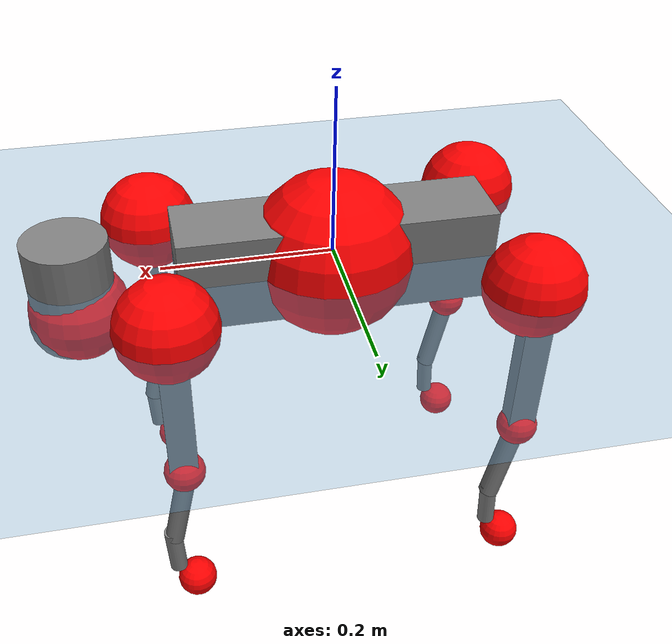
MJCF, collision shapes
<mujoco model="go2">
  <compiler angle="radian" assetdir="assets" balanceinertia="true" inertiafromgeom="false"/>

  <option timestep="0.005" density="1.2" viscosity="2e-05"/>

  <size nkey="1"/>

  <visual>
    <quality shadowsize="8192"/>
    <map shadowclip="0.5"/>
  </visual>

  <default>
    <default class="/">
      <geom contype="0" conaffinity="0" group="1" solref="-1000 -80"/>
      <site size="0.01 0.005 0.005" group="5"/>
      <general forcelimited="true" biastype="affine" gainprm="20" biasprm="0 -20 -0.5"/>
      <default class="go2">
        <joint armature="0.01" damping="0.01" frictionloss="0.2"/>
        <geom condim="1" margin="0.001"/>
        <default class="visual">
          <geom type="mesh" group="2"/>
        </default>
        <default class="collision">
          <geom group="3"/>
          <default class="foot">
            <geom size="0.022 0 0" condim="6" priority="1" friction="0.8 0.02 0.01" solimp="0.015 1 0.022"/>
          </default>
        </default>
        <default class="reward_collision_sphere">
          <geom group="5" rgba="1 0 0 1"/>
        </default>
      </default>
    </default>
  </default>

  <asset>
    <texture type="skybox" colorspace="auto" name="//unnamed_texture_0" builtin="gradient" rgb1="0.95 0.95 0.95" rgb2="0.95 0.95 0.95" width="100" height="600"/>
    <texture type="2d" colorspace="auto" name="texplane" builtin="checker" rgb1="0.345 0.575 0.748" rgb2="0.345 0.575 0.748" markrgb="1 1 1" width="512" height="512"/>
    <material name="MatPlane" class="/" texture="texplane" texuniform="true" texrepeat="2 2" specular="0.9"/>
    <material name="metal" class="/" rgba="0.9 0.95 0.95 1"/>
    <material name="black" class="/" rgba="0 0 0 1"/>
    <material name="white" class="/"/>
    <material name="gray" class="/" rgba="0.671705 0.692426 0.77427 1"/>
    <mesh name="base_0" class="/" file="base_0.obj"/>
    <mesh name="base_1" class="/" file="base_1.obj"/>
    <mesh name="base_2" class="/" file="base_2.obj"/>
    <mesh name="base_3" class="/" file="base_3.obj"/>
    <mesh name="base_4" class="/" file="base_4.obj"/>
    <mesh name="hip_0" class="/" file="hip_0.obj"/>
    <mesh name="hip_1" class="/" file="hip_1.obj"/>
    <mesh name="thigh_0" class="/" file="thigh_0.obj"/>
    <mesh name="thigh_1" class="/" file="thigh_1.obj"/>
    <mesh name="thigh_mirror_0" class="/" file="thigh_mirror_0.obj"/>
    <mesh name="thigh_mirror_1" class="/" file="thigh_mirror_1.obj"/>
    <mesh name="calf_0" class="/" file="calf_0.obj"/>
    <mesh name="calf_1" class="/" file="calf_1.obj"/>
    <mesh name="calf_mirror_0" class="/" file="calf_mirror_0.obj"/>
    <mesh name="calf_mirror_1" class="/" file="calf_mirror_1.obj"/>
    <mesh name="foot" class="/" file="foot.obj"/>
  </asset>

  <worldbody>
    <geom name="floor" class="/" size="100 100 0.125" type="plane" group="0" material="MatPlane"/>
    <light name="toplight_shadow" class="/" pos="0 0 5" dir="0.0990148 0.0990148 -0.990148" type="directional" ambient="0.04 0.04 0.04" diffuse="0.55 0.55 0.55" specular="0.12 0.12 0.12"/>
    <light name="toplight_fill" class="/" pos="0 0 5" dir="0.0990148 0.0990148 -0.990148" type="directional" castshadow="false" ambient="0.04 0.04 0.04" diffuse="0.3 0.3 0.3" specular="0.08 0.08 0.08"/>
    <body name="trunk" childclass="go2" pos="0.000533413 0.000200555 -0.00172945" quat="1 0.000227178 -0.000288921 -0.000582042">
      <inertial pos="0.022773 0.000989621 -0.00489947" quat="-0.00194446 0.717248 -0.00418866 0.696803" mass="6.5053" diaginertia="0.141253 0.0853397 0.0143226"/>
      <joint name="//unnamed_joint_0" type="free" armature="0" damping="0" frictionloss="0"/>
      <geom name="//unnamed_geom_1" class="visual" material="black" mesh="base_0"/>
      <geom name="//unnamed_geom_2" class="visual" material="black" mesh="base_1"/>
      <geom name="//unnamed_geom_3" class="visual" material="black" mesh="base_2"/>
      <geom name="//unnamed_geom_4" class="visual" material="white" mesh="base_3"/>
      <geom name="//unnamed_geom_5" class="visual" material="gray" mesh="base_4"/>
      <geom name="trunk_1" class="collision" size="0.182875 0.0454514 0.0554167" type="box"/>
      <geom name="trunk_2" class="collision" size="0.0486111 0.04375" pos="0.300252 0 0.00894762" type="cylinder"/>
      <geom name="trunk_3" class="collision" size="0.0456944" pos="0.30868 0 -0.0536857"/>
      <geom name="//unnamed_geom_9" class="reward_collision_sphere" size="0.0972222"/>
      <geom name="//unnamed_geom_10" class="reward_collision_sphere" size="0.0583333" pos="0.294985 0 -0.0402643"/>
      <site name="imu" pos="-0.0257641 -0.00345347 0.0361706" size="0.00972222"/>
      <camera name="track" pos="0 -1.93678 0" quat="0.707107 0.707107 0 0" mode="trackcom"/>
      <camera name="ego_camera" pos="0.328697 0 0.0402643" quat="-0.5 -0.5 0.5 0.5"/>
      <body name="FL_hip" pos="0.202766 0.0442257 0.000780937" quat="1 1.92763e-06 -6.65994e-05 2.31925e-05">
        <inertial pos="-0.00656391 0.00172408 -0.00208663" quat="0.503544 0.499347 0.500905 0.496176" mass="0.629323" diaginertia="0.0011588 0.000515503 0.000278132"/>
        <joint name="FL_hip_joint" pos="0 0 0" axis="0.99999 -0.00428399 -0.00158416" range="-1.05213 1.03249" armature="0.00970578" damping="0.00312753" frictionloss="0.186088"/>
        <geom name="//unnamed_geom_11" class="visual" material="metal" mesh="hip_0"/>
        <geom name="//unnamed_geom_12" class="visual" material="gray" mesh="hip_1"/>
        <geom name="//unnamed_geom_13" class="collision" size="0.0447222 0.0194444" pos="0 0.0774711 0" quat="0.707107 0.707107 0 0" type="cylinder"/>
        <geom name="//unnamed_geom_14" class="reward_collision_sphere" size="0.0583333" pos="0 0.0677872 0"/>
        <body name="FL_thigh" pos="-0.00145264 0.0912613 0.00216868" quat="1 3.19743e-05 -3.85183e-05 -7.46355e-05">
          <inertial pos="-0.00451858 -0.0214284 -0.0289452" quat="0.830146 0.0814607 -0.0203653 0.551187" mass="1.04528" diaginertia="0.00764418 0.00491368 0.00049497"/>
          <joint name="FL_thigh_joint" pos="0 0 0" axis="-0.007302 0.999971 0.00236244" stiffness="0.00212226" range="-1.55353 3.49094" armature="0.00971454" damping="0.00787632" frictionloss="0.194101"/>
          <geom name="//unnamed_geom_15" class="visual" material="metal" mesh="thigh_0"/>
          <geom name="//unnamed_geom_16" class="visual" material="gray" mesh="thigh_1"/>
          <geom name="//unnamed_geom_17" class="collision" size="0.103542 0.0119097 0.0165278" pos="0 0 -0.0952921" quat="0.707107 0 0.707107 0" type="box"/>
          <body name="FL_calf" pos="-0.000875638 -0.000828919 -0.190401" quat="1 1.42419e-05 -2.20833e-06 -4.82673e-06">
            <inertial pos="0.00462336 -0.00191458 -0.125743" quat="0.710598 0.00212062 -0.00460894 0.70358" mass="0.222642" diaginertia="0.00190925 0.00125758 3.05097e-05"/>
            <joint name="FL_calf_joint" pos="0 0 0" axis="0.00135274 0.999999 -0.000279377" stiffness="0.0064423" range="-2.76539 -0.849565" armature="0.00972059" damping="0.0111393" frictionloss="0.212568"/>
            <geom name="//unnamed_geom_18" class="visual" material="gray" mesh="calf_0"/>
            <geom name="//unnamed_geom_19" class="visual" material="black" mesh="calf_1"/>
            <geom name="FL_calf0" class="collision" size="0.0116667 0.0583333" pos="0.00842813 0 -0.0536857" quat="0.994493 0 -0.104807 0" type="cylinder"/>
            <geom name="//unnamed_geom_21" class="collision" size="0.0106944 0.0315972" pos="0.0210703 0 -0.132425" quat="0.999688 0 0.0249974 0" type="cylinder"/>
            <geom name="//unnamed_geom_22" class="visual" pos="0 0 -0.190584" quat="1 0 0 0" material="black" mesh="foot"/>
            <geom name="FL_foot" class="foot" size="0.0172645" pos="-0.00210703 0 -0.190584"/>
            <geom name="//unnamed_geom_24" class="reward_collision_sphere" size="0.0243056"/>
            <geom name="//unnamed_geom_25" class="reward_collision_sphere" size="0.0243056" pos="-0.00210703 0 -0.190584"/>
            <site name="FL_foot" class="foot" pos="-0.00210703 0 -0.190584" size="0.00972222"/>
          </body>
        </body>
      </body>
      <body name="FR_hip" pos="0.204443 -0.0455003 -0.000346221" quat="0.999999 0.000993439 0.000159636 -0.000332429">
        <inertial pos="-0.00483946 -0.00185081 -0.000681628" quat="0.502453 0.506821 0.491667 0.498935" mass="0.642178" diaginertia="0.00116136 0.000513659 0.000279259"/>
        <joint name="FR_hip_joint" pos="0 0 0" axis="0.999999 0.00114125 -0.00126287" range="-1.08285 1.06629" armature="0.00960351" damping="0.0102801" frictionloss="0.190518"/>
        <geom name="//unnamed_geom_26" class="visual" pos="0 6.41405e-10 2.75112e-08" quat="4.63268e-05 1 0 0" material="metal" mesh="hip_0"/>
        <geom name="//unnamed_geom_27" class="visual" pos="0 1.03979e-09 -6.80457e-08" quat="4.63268e-05 1 0 0" material="gray" mesh="hip_1"/>
        <geom name="//unnamed_geom_28" class="collision" size="0.0447222 0.0194444" pos="0 -0.0774711 0" quat="0.707107 0.707107 0 0" type="cylinder"/>
        <geom name="//unnamed_geom_29" class="reward_collision_sphere" size="0.0583333" pos="0 -0.0677872 0"/>
        <body name="FR_thigh" pos="0.000112006 -0.0920935 0.00237017" quat="1 0.000189059 0.000319693 -2.65091e-05">
          <inertial pos="-0.00334057 0.0213087 -0.0281396" quat="0.552945 -0.0200599 0.0863669 0.828487" mass="1.06376" diaginertia="0.0077108 0.00494992 0.000498538"/>
          <joint name="FR_thigh_joint" pos="0 0 0" axis="-0.00162047 -0.999998 0.000644276" stiffness="0.00392624" range="-3.49092 1.58311" armature="0.0102341" damping="0.00513627" frictionloss="0.190801"/>
          <geom name="//unnamed_geom_30" class="visual" material="metal" mesh="thigh_mirror_0"/>
          <geom name="//unnamed_geom_31" class="visual" material="gray" mesh="thigh_mirror_1"/>
          <geom name="//unnamed_geom_32" class="collision" size="0.103542 0.0119097 0.0165278" pos="0 0 -0.0952921" quat="0.707107 0 0.707107 0" type="box"/>
          <body name="FR_calf" pos="-0.00173993 8.46109e-05 -0.189889" quat="1 -4.48637e-05 -7.76325e-06 -8.38574e-05">
            <inertial pos="0.00672874 -0.00048059 -0.126146" quat="0.697865 -0.000578667 0.00550011 0.716208" mass="0.217012" diaginertia="0.00190054 0.00124129 3.01628e-05"/>
            <joint name="FR_calf_joint" pos="0 0 0" axis="-0.00101961 -0.999999 -0.000605238" stiffness="0.000396221" range="0.842474 2.71521" armature="0.00960735" damping="0.00324414" frictionloss="0.203764"/>
            <geom name="//unnamed_geom_33" class="visual" material="gray" mesh="calf_mirror_0"/>
            <geom name="//unnamed_geom_34" class="visual" material="black" mesh="calf_mirror_1"/>
            <geom name="FR_calf0" class="collision" size="0.0126389 0.0583333" pos="0.0105352 0 -0.0536857" quat="0.995004 0 -0.0998334 0" type="cylinder"/>
            <geom name="//unnamed_geom_36" class="collision" size="0.0106944 0.0315972" pos="0.0210703 0 -0.132425" quat="0.999688 0 0.0249974 0" type="cylinder"/>
            <geom name="//unnamed_geom_37" class="visual" pos="0 0 -0.190584" quat="1 0 0 0" material="black" mesh="foot"/>
            <geom name="FR_foot" class="foot" size="0.0213688" pos="-0.00210703 0 -0.190584"/>
            <geom name="//unnamed_geom_39" class="reward_collision_sphere" size="0.0243056"/>
            <geom name="//unnamed_geom_40" class="reward_collision_sphere" size="0.0243056" pos="-0.00210703 0 -0.190584"/>
            <site name="FR_foot" class="foot" pos="-0.00210703 0 -0.190584" size="0.00972222"/>
          </body>
        </body>
      </body>
      <body name="RL_hip" pos="-0.203889 0.045276 0.00115381" quat="1 -0.000118507 -3.90201e-05 -3.94311e-05">
        <inertial pos="0.00613716 0.00133115 -0.00163753" quat="0.502679 0.499375 0.500303 0.49763" mass="0.624623" diaginertia="0.00117129 0.000505909 0.000276752"/>
        <joint name="RL_hip_joint" pos="0 0 0" axis="-0.99983 -0.0184051 -0.000643315" stiffness="0.00260055" range="-1.0686 1.07034" armature="0.0101158" damping="0.0125044" frictionloss="0.193578"/>
        <geom name="//unnamed_geom_41" class="visual" pos="-1.38301e-09 0 -2.71101e-07" quat="4.63268e-05 0 1 0" material="metal" mesh="hip_0"/>
        <geom name="//unnamed_geom_42" class="visual" pos="-2.24202e-09 0 -2.40428e-07" quat="4.63268e-05 0 1 0" material="gray" mesh="hip_1"/>
        <geom name="//unnamed_geom_43" class="collision" size="0.0447222 0.0194444" pos="0 0.0774711 0" quat="0.707107 0.707107 0 0" type="cylinder"/>
        <geom name="//unnamed_geom_44" class="reward_collision_sphere" size="0.0583333" pos="0 0.0677872 0"/>
        <body name="RL_thigh" pos="0.00103376 0.0910024 0.00103817" quat="1 -2.95768e-05 -5.68811e-06 1.64392e-07">
          <inertial pos="-0.00192885 -0.0214064 -0.0311467" quat="0.829534 0.0846744 -0.0201278 0.551633" mass="1.08717" diaginertia="0.00805794 0.0051349 0.000515648"/>
          <joint name="RL_thigh_joint" pos="0 0 0" axis="0.000792447 0.999877 0.0156475" range="-0.515436 4.53664" armature="0.00968636" damping="0.00119949" frictionloss="0.184925"/>
          <geom name="//unnamed_geom_45" class="visual" material="metal" mesh="thigh_0"/>
          <geom name="//unnamed_geom_46" class="visual" material="gray" mesh="thigh_1"/>
          <geom name="//unnamed_geom_47" class="collision" size="0.103542 0.0119097 0.0165278" pos="0 0 -0.0952921" quat="0.707107 0 0.707107 0" type="box"/>
          <body name="RL_calf" pos="-0.000319 -0.00150608 -0.191056" quat="1 9.2657e-06 7.25598e-05 -2.42413e-05">
            <inertial pos="0.00495913 -0.000387175 -0.128403" quat="0.711348 -0.00399982 -0.006559 0.702798" mass="0.221774" diaginertia="0.00193225 0.00126154 3.01261e-05"/>
            <joint name="RL_calf_joint" pos="0 0 0" axis="-0.00636256 0.99995 0.00767443" range="-2.71241 -0.877711" armature="0.0103012" damping="0" frictionloss="0.194564"/>
            <geom name="//unnamed_geom_48" class="visual" material="gray" mesh="calf_0"/>
            <geom name="//unnamed_geom_49" class="visual" material="black" mesh="calf_1"/>
            <geom name="RL_calf0" class="collision" size="0.0126389 0.0583333" pos="0.0105352 0 -0.0536857" quat="0.995004 0 -0.0998334 0" type="cylinder"/>
            <geom name="//unnamed_geom_51" class="collision" size="0.0106944 0.0315972" pos="0.0210703 0 -0.132425" quat="0.999688 0 0.0249974 0" type="cylinder"/>
            <geom name="//unnamed_geom_52" class="visual" pos="0 0 -0.190584" quat="1 0 0 0" material="black" mesh="foot"/>
            <geom name="RL_foot" class="foot" size="0.0189856" pos="-0.00210703 0 -0.190584"/>
            <geom name="//unnamed_geom_54" class="reward_collision_sphere" size="0.0243056"/>
            <geom name="//unnamed_geom_55" class="reward_collision_sphere" size="0.0243056" pos="-0.00210703 0 -0.190584"/>
            <site name="RL_foot" class="foot" pos="-0.00210703 0 -0.190584" size="0.00972222"/>
          </body>
        </body>
      </body>
      <body name="RR_hip" pos="-0.201982 -0.0455701 0.000768632" quat="1 0.000123402 -1.58153e-05 -0.000254355">
        <inertial pos="0.00523621 -0.0013111 0.000579891" quat="0.497201 0.500165 0.501301 0.501322" mass="0.620155" diaginertia="0.00119393 0.000516482 0.000278206"/>
        <joint name="RR_hip_joint" pos="0 0 0" axis="-0.999948 -0.00790586 -0.00642231" range="-1.0283 1.04823" armature="0.00969102" damping="0.00259987" frictionloss="0.213578"/>
        <geom name="//unnamed_geom_56" class="visual" pos="1.38006e-09 6.41405e-10 -2.98612e-07" quat="2.14617e-09 4.63268e-05 4.63268e-05 -1" material="metal" mesh="hip_0"/>
        <geom name="//unnamed_geom_57" class="visual" pos="2.24931e-09 1.03979e-09 -1.72382e-07" quat="2.14617e-09 4.63268e-05 4.63268e-05 -1" material="gray" mesh="hip_1"/>
        <geom name="//unnamed_geom_58" class="collision" size="0.0447222 0.0194444" pos="0 -0.0774711 0" quat="0.707107 0.707107 0 0" type="cylinder"/>
        <geom name="//unnamed_geom_59" class="reward_collision_sphere" size="0.0583333" pos="0 -0.0677872 0"/>
        <body name="RR_thigh" pos="0.000170899 -0.0931004 -0.00165906" quat="1 -4.77257e-05 6.79409e-05 -0.000141726">
          <inertial pos="-0.00301988 0.02272 -0.0310538" quat="0.551205 -0.0206295 0.0832571 0.82995" mass="1.04183" diaginertia="0.00786783 0.00501737 0.000507363"/>
          <joint name="RR_thigh_joint" pos="0 0 0" axis="0.000121718 -1 0.000208094" stiffness="0.000910577" range="-4.53511 0.519441" armature="0.00983367" damping="0.0218834" frictionloss="0.197817"/>
          <geom name="//unnamed_geom_60" class="visual" material="metal" mesh="thigh_mirror_0"/>
          <geom name="//unnamed_geom_61" class="visual" material="gray" mesh="thigh_mirror_1"/>
          <geom name="//unnamed_geom_62" class="collision" size="0.103542 0.0119097 0.0165278" pos="0 0 -0.0952921" quat="0.707107 0 0.707107 0" type="box"/>
          <body name="RR_calf" pos="-0.000434794 0.000256653 -0.192287" quat="1 -0.000470291 0.000196514 0.000794253">
            <inertial pos="0.00589649 0.000560319 -0.126347" quat="0.699913 -0.00828918 0.00222444 0.714176" mass="0.219564" diaginertia="0.00190924 0.00122366 2.97184e-05"/>
            <joint name="RR_calf_joint" pos="0 0 0" axis="0.012076 -0.999926 0.00164691" range="0.857058 2.73097" armature="0.0097727" damping="0.00554596" frictionloss="0.198794"/>
            <geom name="//unnamed_geom_63" class="visual" material="gray" mesh="calf_mirror_0"/>
            <geom name="//unnamed_geom_64" class="visual" material="black" mesh="calf_mirror_1"/>
            <geom name="RR_calf0" class="collision" size="0.0126389 0.0583333" pos="0.0105352 0 -0.0536857" quat="0.995004 0 -0.0998334 0" type="cylinder"/>
            <geom name="//unnamed_geom_66" class="collision" size="0.0106944 0.0315972" pos="0.0210703 0 -0.132425" quat="0.999688 0 0.0249974 0" type="cylinder"/>
            <geom name="//unnamed_geom_67" class="visual" pos="0 0 -0.190584" quat="1 0 0 0" material="black" mesh="foot"/>
            <geom name="RR_foot" class="foot" size="0.023343" pos="-0.00210703 0 -0.190584"/>
            <geom name="//unnamed_geom_69" class="reward_collision_sphere" size="0.0243056"/>
            <geom name="//unnamed_geom_70" class="reward_collision_sphere" size="0.0243056" pos="-0.00210703 0 -0.190584"/>
            <site name="RR_foot" class="foot" pos="-0.00210703 0 -0.190584" size="0.00972222"/>
          </body>
        </body>
      </body>
    </body>
  </worldbody>

  <contact>
    <pair class="/" geom1="floor" geom2="FL_foot" name="//unnamed_contact_0"/>
    <pair class="/" geom1="floor" geom2="FR_foot" name="//unnamed_contact_1"/>
    <pair class="/" geom1="floor" geom2="RL_foot" name="//unnamed_contact_2"/>
    <pair class="/" geom1="floor" geom2="RR_foot" name="//unnamed_contact_3"/>
  </contact>

  <actuator>
    <general name="FL_hip" class="/" joint="FL_hip_joint" forcerange="-23.2999 23.2999" gainprm="19.5597" biasprm="0 -19.5597 -0.495543"/>
    <general name="FL_thigh" class="/" joint="FL_thigh_joint" forcerange="-23.3627 23.3627" gainprm="19.5597" biasprm="0 -19.5597 -0.495543"/>
    <general name="FL_calf" class="/" joint="FL_calf_joint" forcerange="-42.8457 42.8457" gainprm="19.5597" biasprm="0 -19.5597 -0.495543"/>
    <general name="FR_hip" class="/" joint="FR_hip_joint" forcerange="-22.6349 22.6349" gainprm="19.5597" biasprm="0 -19.5597 -0.495543"/>
    <general name="FR_thigh" class="/" joint="FR_thigh_joint" forcerange="-22.3148 22.3148" gainprm="19.5597" biasprm="0 -19.5597 -0.495543"/>
    <general name="FR_calf" class="/" joint="FR_calf_joint" forcerange="-43.9811 43.9811" gainprm="19.5597" biasprm="0 -19.5597 -0.495543"/>
    <general name="RL_hip" class="/" joint="RL_hip_joint" forcerange="-23.1518 23.1518" gainprm="19.5597" biasprm="0 -19.5597 -0.495543"/>
    <general name="RL_thigh" class="/" joint="RL_thigh_joint" forcerange="-21.6554 21.6554" gainprm="19.5597" biasprm="0 -19.5597 -0.495543"/>
    <general name="RL_calf" class="/" joint="RL_calf_joint" forcerange="-46.0448 46.0448" gainprm="19.5597" biasprm="0 -19.5597 -0.495543"/>
    <general name="RR_hip" class="/" joint="RR_hip_joint" forcerange="-23.155 23.155" gainprm="19.5597" biasprm="0 -19.5597 -0.495543"/>
    <general name="RR_thigh" class="/" joint="RR_thigh_joint" forcerange="-23.7576 23.7576" gainprm="19.5597" biasprm="0 -19.5597 -0.495543"/>
    <general name="RR_calf" class="/" joint="RR_calf_joint" forcerange="-43.4561 43.4561" gainprm="19.5597" biasprm="0 -19.5597 -0.495543"/>
  </actuator>

  <sensor>
    <gyro site="imu" name="imu_angular_velocity"/>
    <velocimeter site="imu" name="imu_linear_velocity"/>
    <framelinvel objtype="site" objname="FL_foot" name="FL_foot_global_linear_velocity"/>
    <framelinvel objtype="site" objname="FR_foot" name="FR_foot_global_linear_velocity"/>
    <framelinvel objtype="site" objname="RL_foot" name="RL_foot_global_linear_velocity"/>
    <framelinvel objtype="site" objname="RR_foot" name="RR_foot_global_linear_velocity"/>
  </sensor>

  <keyframe>
    <key name="home" qpos="0 0 0.325 1 0 0 0 0.1 0.8 -1.5 -0.1 -0.8 1.5 -0.1 0.8 -1.5 0.1 -0.8 1.5"/>
  </keyframe>
</mujoco>
